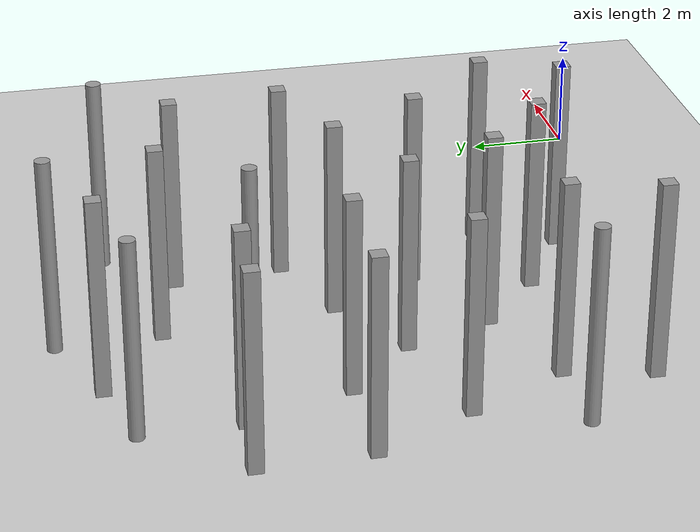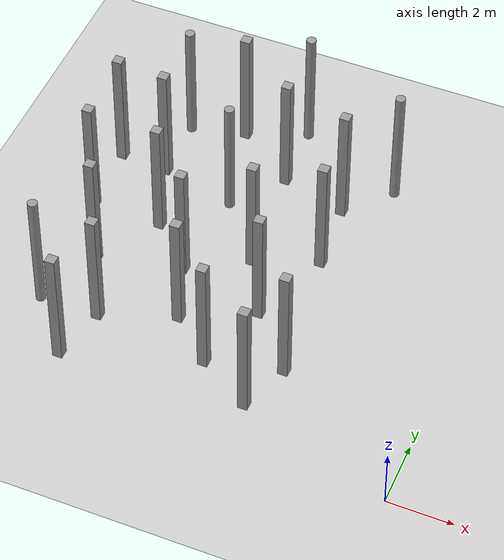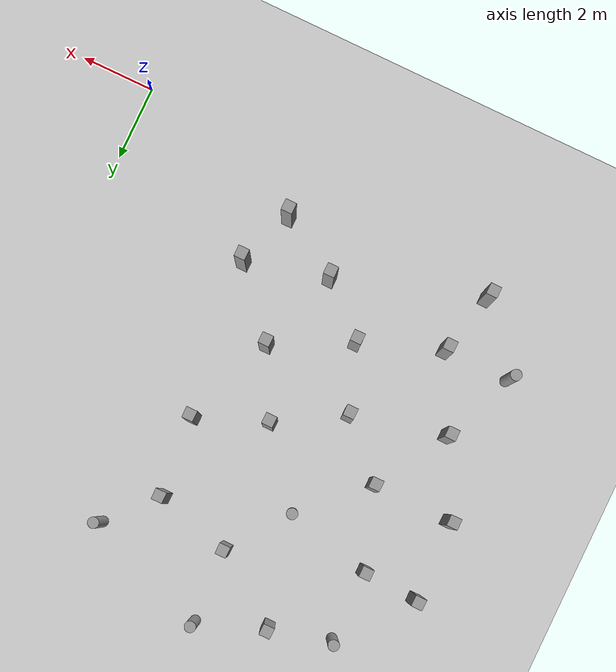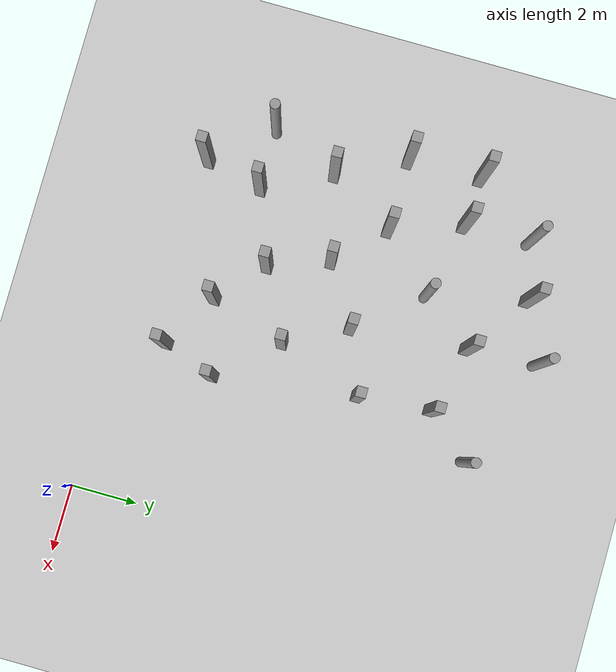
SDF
<sdf version="1.6">
 <world name="default">
  <model name="ground_plane">
   <static>1</static>
   <link name="link">
    <collision name="collision">
     <geometry><plane><normal>0 0 1</normal><size>100 100</size></plane></geometry>
    </collision>
    <visual name="visual">
     <cast_shadows>0</cast_shadows>
     <geometry><plane><normal>0 0 1</normal><size>100 100</size></plane></geometry>
     <material>
      <script><uri>file://media/materials/scripts/gazebo.material</uri><name>Gazebo/Gray</name></script>
     </material>
    </visual>
   </link>
  </model>
  <model name="unit_box_clone_3">
   <link name="link">
    <inertial>
     <mass>1000</mass>
     <inertia><ixx>166.667</ixx><ixy>0</ixy><ixz>0</ixz><iyy>166.667</iyy><iyz>0</iyz><izz>166.667</izz></inertia>
    </inertial>
    <visual name="visual">
     <geometry><box><size>0.3 0.3 4</size></box></geometry>
     <material>
      <script><name>Gazebo/Grey</name><uri>file://media/materials/scripts/gazebo.material</uri></script>
      <shader type="vertex"><normal_map>__default__</normal_map></shader>
      <ambient>0.3 0.3 0.3 1</ambient>
      <diffuse>0.7 0.7 0.7 1</diffuse>
      <specular>0.01 0.01 0.01 1</specular>
      <emissive>0 0 0 1</emissive>
     </material>
    </visual>
    <collision name="collision">
     <geometry><box><size>0.3 0.3 4</size></box></geometry>
     <surface>
      <friction>
       <ode><mu>1</mu><mu2>1</mu2><fdir1>0 0 0</fdir1><slip1>0</slip1><slip2>0</slip2></ode>
       <torsional>
        <coefficient>1</coefficient>
        <patch_radius>0</patch_radius>
        <surface_radius>0</surface_radius>
        <use_patch_radius>1</use_patch_radius>
        <ode><slip>0</slip></ode>
       </torsional>
      </friction>
      <bounce><restitution_coefficient>0</restitution_coefficient><threshold>1e+06</threshold></bounce>
      <contact>
       <collide_without_contact>0</collide_without_contact>
       <collide_without_contact_bitmask>1</collide_without_contact_bitmask>
       <collide_bitmask>1</collide_bitmask>
       <ode>
        <soft_cfm>0</soft_cfm>
        <soft_erp>0.2</soft_erp>
        <kp>1e+13</kp>
        <kd>1</kd>
        <max_vel>0.01</max_vel>
        <min_depth>0</min_depth>
       </ode>
       <bullet>
        <split_impulse>1</split_impulse>
        <split_impulse_penetration_threshold>-0.01</split_impulse_penetration_threshold>
        <soft_cfm>0</soft_cfm>
        <soft_erp>0.2</soft_erp>
        <kp>1e+13</kp>
        <kd>1</kd>
       </bullet>
      </contact>
     </surface>
    </collision>
   </link>
   <static>0</static>
   <pose>-9.81581 6.97356 2.00001 3.5e-05 5e-06 -0.002659</pose>
  </model>
  <model name="unit_box_clone_4">
   <link name="link">
    <inertial>
     <mass>1000</mass>
     <inertia><ixx>166.667</ixx><ixy>0</ixy><ixz>0</ixz><iyy>166.667</iyy><iyz>0</iyz><izz>166.667</izz></inertia>
    </inertial>
    <visual name="visual">
     <geometry><box><size>0.3 0.3 4</size></box></geometry>
     <material>
      <script><name>Gazebo/Grey</name><uri>file://media/materials/scripts/gazebo.material</uri></script>
      <shader type="vertex"><normal_map>__default__</normal_map></shader>
      <ambient>0.3 0.3 0.3 1</ambient>
      <diffuse>0.7 0.7 0.7 1</diffuse>
      <specular>0.01 0.01 0.01 1</specular>
      <emissive>0 0 0 1</emissive>
     </material>
    </visual>
    <collision name="collision">
     <geometry><box><size>0.3 0.3 4</size></box></geometry>
     <surface>
      <friction>
       <ode><mu>1</mu><mu2>1</mu2><fdir1>0 0 0</fdir1><slip1>0</slip1><slip2>0</slip2></ode>
       <torsional>
        <coefficient>1</coefficient>
        <patch_radius>0</patch_radius>
        <surface_radius>0</surface_radius>
        <use_patch_radius>1</use_patch_radius>
        <ode><slip>0</slip></ode>
       </torsional>
      </friction>
      <bounce><restitution_coefficient>0</restitution_coefficient><threshold>1e+06</threshold></bounce>
      <contact>
       <collide_without_contact>0</collide_without_contact>
       <collide_without_contact_bitmask>1</collide_without_contact_bitmask>
       <collide_bitmask>1</collide_bitmask>
       <ode>
        <soft_cfm>0</soft_cfm>
        <soft_erp>0.2</soft_erp>
        <kp>1e+13</kp>
        <kd>1</kd>
        <max_vel>0.01</max_vel>
        <min_depth>0</min_depth>
       </ode>
       <bullet>
        <split_impulse>1</split_impulse>
        <split_impulse_penetration_threshold>-0.01</split_impulse_penetration_threshold>
        <soft_cfm>0</soft_cfm>
        <soft_erp>0.2</soft_erp>
        <kp>1e+13</kp>
        <kd>1</kd>
       </bullet>
      </contact>
     </surface>
    </collision>
   </link>
   <static>0</static>
   <pose>-12.064 9.20885 2.00002 0.00014 1e-05 -0.004402</pose>
  </model>
  <model name="unit_box_clone_8">
   <link name="link">
    <inertial>
     <mass>1000</mass>
     <inertia><ixx>166.667</ixx><ixy>0</ixy><ixz>0</ixz><iyy>166.667</iyy><iyz>0</iyz><izz>166.667</izz></inertia>
    </inertial>
    <visual name="visual">
     <geometry><box><size>0.3 0.3 4</size></box></geometry>
     <material>
      <script><name>Gazebo/Grey</name><uri>file://media/materials/scripts/gazebo.material</uri></script>
      <shader type="vertex"><normal_map>__default__</normal_map></shader>
      <ambient>0.3 0.3 0.3 1</ambient>
      <diffuse>0.7 0.7 0.7 1</diffuse>
      <specular>0.01 0.01 0.01 1</specular>
      <emissive>0 0 0 1</emissive>
     </material>
    </visual>
    <collision name="collision">
     <geometry><box><size>0.3 0.3 4</size></box></geometry>
     <surface>
      <friction>
       <ode><mu>1</mu><mu2>1</mu2><fdir1>0 0 0</fdir1><slip1>0</slip1><slip2>0</slip2></ode>
       <torsional>
        <coefficient>1</coefficient>
        <patch_radius>0</patch_radius>
        <surface_radius>0</surface_radius>
        <use_patch_radius>1</use_patch_radius>
        <ode><slip>0</slip></ode>
       </torsional>
      </friction>
      <bounce><restitution_coefficient>0</restitution_coefficient><threshold>1e+06</threshold></bounce>
      <contact>
       <collide_without_contact>0</collide_without_contact>
       <collide_without_contact_bitmask>1</collide_without_contact_bitmask>
       <collide_bitmask>1</collide_bitmask>
       <ode>
        <soft_cfm>0</soft_cfm>
        <soft_erp>0.2</soft_erp>
        <kp>1e+13</kp>
        <kd>1</kd>
        <max_vel>0.01</max_vel>
        <min_depth>0</min_depth>
       </ode>
       <bullet>
        <split_impulse>1</split_impulse>
        <split_impulse_penetration_threshold>-0.01</split_impulse_penetration_threshold>
        <soft_cfm>0</soft_cfm>
        <soft_erp>0.2</soft_erp>
        <kp>1e+13</kp>
        <kd>1</kd>
       </bullet>
      </contact>
     </surface>
    </collision>
   </link>
   <static>0</static>
   <pose>-6.68892 6.67586 2 -3e-06 -1.7e-05 -0.006785</pose>
  </model>
  <model name="unit_box_clone_9">
   <link name="link">
    <inertial>
     <mass>1000</mass>
     <inertia><ixx>166.667</ixx><ixy>0</ixy><ixz>0</ixz><iyy>166.667</iyy><iyz>0</iyz><izz>166.667</izz></inertia>
    </inertial>
    <visual name="visual">
     <geometry><box><size>0.3 0.3 4</size></box></geometry>
     <material>
      <script><name>Gazebo/Grey</name><uri>file://media/materials/scripts/gazebo.material</uri></script>
      <shader type="vertex"><normal_map>__default__</normal_map></shader>
      <ambient>0.3 0.3 0.3 1</ambient>
      <diffuse>0.7 0.7 0.7 1</diffuse>
      <specular>0.01 0.01 0.01 1</specular>
      <emissive>0 0 0 1</emissive>
     </material>
    </visual>
    <collision name="collision">
     <geometry><box><size>0.3 0.3 4</size></box></geometry>
     <surface>
      <friction>
       <ode><mu>1</mu><mu2>1</mu2><fdir1>0 0 0</fdir1><slip1>0</slip1><slip2>0</slip2></ode>
       <torsional>
        <coefficient>1</coefficient>
        <patch_radius>0</patch_radius>
        <surface_radius>0</surface_radius>
        <use_patch_radius>1</use_patch_radius>
        <ode><slip>0</slip></ode>
       </torsional>
      </friction>
      <bounce><restitution_coefficient>0</restitution_coefficient><threshold>1e+06</threshold></bounce>
      <contact>
       <collide_without_contact>0</collide_without_contact>
       <collide_without_contact_bitmask>1</collide_without_contact_bitmask>
       <collide_bitmask>1</collide_bitmask>
       <ode>
        <soft_cfm>0</soft_cfm>
        <soft_erp>0.2</soft_erp>
        <kp>1e+13</kp>
        <kd>1</kd>
        <max_vel>0.01</max_vel>
        <min_depth>0</min_depth>
       </ode>
       <bullet>
        <split_impulse>1</split_impulse>
        <split_impulse_penetration_threshold>-0.01</split_impulse_penetration_threshold>
        <soft_cfm>0</soft_cfm>
        <soft_erp>0.2</soft_erp>
        <kp>1e+13</kp>
        <kd>1</kd>
       </bullet>
      </contact>
     </surface>
    </collision>
   </link>
   <static>0</static>
   <pose>-8.44974 5.60757 2.00001 3.5e-05 5e-06 -0.002659</pose>
  </model>
  <model name="unit_box_clone_10">
   <link name="link">
    <inertial>
     <mass>1000</mass>
     <inertia><ixx>166.667</ixx><ixy>0</ixy><ixz>0</ixz><iyy>166.667</iyy><iyz>0</iyz><izz>166.667</izz></inertia>
    </inertial>
    <visual name="visual">
     <geometry><box><size>0.3 0.3 4</size></box></geometry>
     <material>
      <script><name>Gazebo/Grey</name><uri>file://media/materials/scripts/gazebo.material</uri></script>
      <shader type="vertex"><normal_map>__default__</normal_map></shader>
      <ambient>0.3 0.3 0.3 1</ambient>
      <diffuse>0.7 0.7 0.7 1</diffuse>
      <specular>0.01 0.01 0.01 1</specular>
      <emissive>0 0 0 1</emissive>
     </material>
    </visual>
    <collision name="collision">
     <geometry><box><size>0.3 0.3 4</size></box></geometry>
     <surface>
      <friction>
       <ode><mu>1</mu><mu2>1</mu2><fdir1>0 0 0</fdir1><slip1>0</slip1><slip2>0</slip2></ode>
       <torsional>
        <coefficient>1</coefficient>
        <patch_radius>0</patch_radius>
        <surface_radius>0</surface_radius>
        <use_patch_radius>1</use_patch_radius>
        <ode><slip>0</slip></ode>
       </torsional>
      </friction>
      <bounce><restitution_coefficient>0</restitution_coefficient><threshold>1e+06</threshold></bounce>
      <contact>
       <collide_without_contact>0</collide_without_contact>
       <collide_without_contact_bitmask>1</collide_without_contact_bitmask>
       <collide_bitmask>1</collide_bitmask>
       <ode>
        <soft_cfm>0</soft_cfm>
        <soft_erp>0.2</soft_erp>
        <kp>1e+13</kp>
        <kd>1</kd>
        <max_vel>0.01</max_vel>
        <min_depth>0</min_depth>
       </ode>
       <bullet>
        <split_impulse>1</split_impulse>
        <split_impulse_penetration_threshold>-0.01</split_impulse_penetration_threshold>
        <soft_cfm>0</soft_cfm>
        <soft_erp>0.2</soft_erp>
        <kp>1e+13</kp>
        <kd>1</kd>
       </bullet>
      </contact>
     </surface>
    </collision>
   </link>
   <static>0</static>
   <pose>-8.91741 11.4995 2 0 -3e-06 -0.008455</pose>
  </model>
  <model name="unit_box_clone_11">
   <link name="link">
    <inertial>
     <mass>1000</mass>
     <inertia><ixx>166.667</ixx><ixy>0</ixy><ixz>0</ixz><iyy>166.667</iyy><iyz>0</iyz><izz>166.667</izz></inertia>
    </inertial>
    <visual name="visual">
     <geometry><box><size>0.3 0.3 4</size></box></geometry>
     <material>
      <script><name>Gazebo/Grey</name><uri>file://media/materials/scripts/gazebo.material</uri></script>
      <shader type="vertex"><normal_map>__default__</normal_map></shader>
      <ambient>0.3 0.3 0.3 1</ambient>
      <diffuse>0.7 0.7 0.7 1</diffuse>
      <specular>0.01 0.01 0.01 1</specular>
      <emissive>0 0 0 1</emissive>
     </material>
    </visual>
    <collision name="collision">
     <geometry><box><size>0.3 0.3 4</size></box></geometry>
     <surface>
      <friction>
       <ode><mu>1</mu><mu2>1</mu2><fdir1>0 0 0</fdir1><slip1>0</slip1><slip2>0</slip2></ode>
       <torsional>
        <coefficient>1</coefficient>
        <patch_radius>0</patch_radius>
        <surface_radius>0</surface_radius>
        <use_patch_radius>1</use_patch_radius>
        <ode><slip>0</slip></ode>
       </torsional>
      </friction>
      <bounce><restitution_coefficient>0</restitution_coefficient><threshold>1e+06</threshold></bounce>
      <contact>
       <collide_without_contact>0</collide_without_contact>
       <collide_without_contact_bitmask>1</collide_without_contact_bitmask>
       <collide_bitmask>1</collide_bitmask>
       <ode>
        <soft_cfm>0</soft_cfm>
        <soft_erp>0.2</soft_erp>
        <kp>1e+13</kp>
        <kd>1</kd>
        <max_vel>0.01</max_vel>
        <min_depth>0</min_depth>
       </ode>
       <bullet>
        <split_impulse>1</split_impulse>
        <split_impulse_penetration_threshold>-0.01</split_impulse_penetration_threshold>
        <soft_cfm>0</soft_cfm>
        <soft_erp>0.2</soft_erp>
        <kp>1e+13</kp>
        <kd>1</kd>
       </bullet>
      </contact>
     </surface>
    </collision>
   </link>
   <static>0</static>
   <pose>-10.559 9.10969 2 -1.3e-05 5e-06 0.00257</pose>
  </model>
  <model name="unit_box_clone_12">
   <link name="link">
    <inertial>
     <mass>1000</mass>
     <inertia><ixx>166.667</ixx><ixy>0</ixy><ixz>0</ixz><iyy>166.667</iyy><iyz>0</iyz><izz>166.667</izz></inertia>
    </inertial>
    <visual name="visual">
     <geometry><box><size>0.3 0.3 4</size></box></geometry>
     <material>
      <script><name>Gazebo/Grey</name><uri>file://media/materials/scripts/gazebo.material</uri></script>
      <shader type="vertex"><normal_map>__default__</normal_map></shader>
      <ambient>0.3 0.3 0.3 1</ambient>
      <diffuse>0.7 0.7 0.7 1</diffuse>
      <specular>0.01 0.01 0.01 1</specular>
      <emissive>0 0 0 1</emissive>
     </material>
    </visual>
    <collision name="collision">
     <geometry><box><size>0.3 0.3 4</size></box></geometry>
     <surface>
      <friction>
       <ode><mu>1</mu><mu2>1</mu2><fdir1>0 0 0</fdir1><slip1>0</slip1><slip2>0</slip2></ode>
       <torsional>
        <coefficient>1</coefficient>
        <patch_radius>0</patch_radius>
        <surface_radius>0</surface_radius>
        <use_patch_radius>1</use_patch_radius>
        <ode><slip>0</slip></ode>
       </torsional>
      </friction>
      <bounce><restitution_coefficient>0</restitution_coefficient><threshold>1e+06</threshold></bounce>
      <contact>
       <collide_without_contact>0</collide_without_contact>
       <collide_without_contact_bitmask>1</collide_without_contact_bitmask>
       <collide_bitmask>1</collide_bitmask>
       <ode>
        <soft_cfm>0</soft_cfm>
        <soft_erp>0.2</soft_erp>
        <kp>1e+13</kp>
        <kd>1</kd>
        <max_vel>0.01</max_vel>
        <min_depth>0</min_depth>
       </ode>
       <bullet>
        <split_impulse>1</split_impulse>
        <split_impulse_penetration_threshold>-0.01</split_impulse_penetration_threshold>
        <soft_cfm>0</soft_cfm>
        <soft_erp>0.2</soft_erp>
        <kp>1e+13</kp>
        <kd>1</kd>
       </bullet>
      </contact>
     </surface>
    </collision>
   </link>
   <static>0</static>
   <pose>-6.46638 2.58987 2 -8e-06 -1e-06 0.000576</pose>
  </model>
  <model name="unit_box_clone_13">
   <link name="link">
    <inertial>
     <mass>1000</mass>
     <inertia><ixx>166.667</ixx><ixy>0</ixy><ixz>0</ixz><iyy>166.667</iyy><iyz>0</iyz><izz>166.667</izz></inertia>
    </inertial>
    <visual name="visual">
     <geometry><box><size>0.3 0.3 4</size></box></geometry>
     <material>
      <script><name>Gazebo/Grey</name><uri>file://media/materials/scripts/gazebo.material</uri></script>
      <shader type="vertex"><normal_map>__default__</normal_map></shader>
      <ambient>0.3 0.3 0.3 1</ambient>
      <diffuse>0.7 0.7 0.7 1</diffuse>
      <specular>0.01 0.01 0.01 1</specular>
      <emissive>0 0 0 1</emissive>
     </material>
    </visual>
    <collision name="collision">
     <geometry><box><size>0.3 0.3 4</size></box></geometry>
     <surface>
      <friction>
       <ode><mu>1</mu><mu2>1</mu2><fdir1>0 0 0</fdir1><slip1>0</slip1><slip2>0</slip2></ode>
       <torsional>
        <coefficient>1</coefficient>
        <patch_radius>0</patch_radius>
        <surface_radius>0</surface_radius>
        <use_patch_radius>1</use_patch_radius>
        <ode><slip>0</slip></ode>
       </torsional>
      </friction>
      <bounce><restitution_coefficient>0</restitution_coefficient><threshold>1e+06</threshold></bounce>
      <contact>
       <collide_without_contact>0</collide_without_contact>
       <collide_without_contact_bitmask>1</collide_without_contact_bitmask>
       <collide_bitmask>1</collide_bitmask>
       <ode>
        <soft_cfm>0</soft_cfm>
        <soft_erp>0.2</soft_erp>
        <kp>1e+13</kp>
        <kd>1</kd>
        <max_vel>0.01</max_vel>
        <min_depth>0</min_depth>
       </ode>
       <bullet>
        <split_impulse>1</split_impulse>
        <split_impulse_penetration_threshold>-0.01</split_impulse_penetration_threshold>
        <soft_cfm>0</soft_cfm>
        <soft_erp>0.2</soft_erp>
        <kp>1e+13</kp>
        <kd>1</kd>
       </bullet>
      </contact>
     </surface>
    </collision>
   </link>
   <static>0</static>
   <pose>-10.0001 3.00014 2 -1.3e-05 7e-06 -0.002228</pose>
  </model>
  <model name="unit_box_clone_14">
   <link name="link">
    <inertial>
     <mass>1000</mass>
     <inertia><ixx>166.667</ixx><ixy>0</ixy><ixz>0</ixz><iyy>166.667</iyy><iyz>0</iyz><izz>166.667</izz></inertia>
    </inertial>
    <visual name="visual">
     <geometry><box><size>0.3 0.3 4</size></box></geometry>
     <material>
      <script><name>Gazebo/Grey</name><uri>file://media/materials/scripts/gazebo.material</uri></script>
      <shader type="vertex"><normal_map>__default__</normal_map></shader>
      <ambient>0.3 0.3 0.3 1</ambient>
      <diffuse>0.7 0.7 0.7 1</diffuse>
      <specular>0.01 0.01 0.01 1</specular>
      <emissive>0 0 0 1</emissive>
     </material>
    </visual>
    <collision name="collision">
     <geometry><box><size>0.3 0.3 4</size></box></geometry>
     <surface>
      <friction>
       <ode><mu>1</mu><mu2>1</mu2><fdir1>0 0 0</fdir1><slip1>0</slip1><slip2>0</slip2></ode>
       <torsional>
        <coefficient>1</coefficient>
        <patch_radius>0</patch_radius>
        <surface_radius>0</surface_radius>
        <use_patch_radius>1</use_patch_radius>
        <ode><slip>0</slip></ode>
       </torsional>
      </friction>
      <bounce><restitution_coefficient>0</restitution_coefficient><threshold>1e+06</threshold></bounce>
      <contact>
       <collide_without_contact>0</collide_without_contact>
       <collide_without_contact_bitmask>1</collide_without_contact_bitmask>
       <collide_bitmask>1</collide_bitmask>
       <ode>
        <soft_cfm>0</soft_cfm>
        <soft_erp>0.2</soft_erp>
        <kp>1e+13</kp>
        <kd>1</kd>
        <max_vel>0.01</max_vel>
        <min_depth>0</min_depth>
       </ode>
       <bullet>
        <split_impulse>1</split_impulse>
        <split_impulse_penetration_threshold>-0.01</split_impulse_penetration_threshold>
        <soft_cfm>0</soft_cfm>
        <soft_erp>0.2</soft_erp>
        <kp>1e+13</kp>
        <kd>1</kd>
       </bullet>
      </contact>
     </surface>
    </collision>
   </link>
   <static>0</static>
   <pose>-11.9999 7.00011 2 2e-06 -1.7e-05 -0.003746</pose>
  </model>
  <model name="unit_box_clone_16">
   <link name="link">
    <inertial>
     <mass>1000</mass>
     <inertia><ixx>166.667</ixx><ixy>0</ixy><ixz>0</ixz><iyy>166.667</iyy><iyz>0</iyz><izz>166.667</izz></inertia>
    </inertial>
    <visual name="visual">
     <geometry><box><size>0.3 0.3 4</size></box></geometry>
     <material>
      <script><name>Gazebo/Grey</name><uri>file://media/materials/scripts/gazebo.material</uri></script>
      <shader type="vertex"><normal_map>__default__</normal_map></shader>
      <ambient>0.3 0.3 0.3 1</ambient>
      <diffuse>0.7 0.7 0.7 1</diffuse>
      <specular>0.01 0.01 0.01 1</specular>
      <emissive>0 0 0 1</emissive>
     </material>
    </visual>
    <collision name="collision">
     <geometry><box><size>0.3 0.3 4</size></box></geometry>
     <surface>
      <friction>
       <ode><mu>1</mu><mu2>1</mu2><fdir1>0 0 0</fdir1><slip1>0</slip1><slip2>0</slip2></ode>
       <torsional>
        <coefficient>1</coefficient>
        <patch_radius>0</patch_radius>
        <surface_radius>0</surface_radius>
        <use_patch_radius>1</use_patch_radius>
        <ode><slip>0</slip></ode>
       </torsional>
      </friction>
      <bounce><restitution_coefficient>0</restitution_coefficient><threshold>1e+06</threshold></bounce>
      <contact>
       <collide_without_contact>0</collide_without_contact>
       <collide_without_contact_bitmask>1</collide_without_contact_bitmask>
       <collide_bitmask>1</collide_bitmask>
       <ode>
        <soft_cfm>0</soft_cfm>
        <soft_erp>0.2</soft_erp>
        <kp>1e+13</kp>
        <kd>1</kd>
        <max_vel>0.01</max_vel>
        <min_depth>0</min_depth>
       </ode>
       <bullet>
        <split_impulse>1</split_impulse>
        <split_impulse_penetration_threshold>-0.01</split_impulse_penetration_threshold>
        <soft_cfm>0</soft_cfm>
        <soft_erp>0.2</soft_erp>
        <kp>1e+13</kp>
        <kd>1</kd>
       </bullet>
      </contact>
     </surface>
    </collision>
   </link>
   <static>0</static>
   <pose>-10.9999 5.00011 2 2e-06 -1.7e-05 -0.003746</pose>
  </model>
  <model name="unit_box_clone_18">
   <link name="link">
    <inertial>
     <mass>1000</mass>
     <inertia><ixx>166.667</ixx><ixy>0</ixy><ixz>0</ixz><iyy>166.667</iyy><iyz>0</iyz><izz>166.667</izz></inertia>
    </inertial>
    <visual name="visual">
     <geometry><box><size>0.3 0.3 4</size></box></geometry>
     <material>
      <script><name>Gazebo/Grey</name><uri>file://media/materials/scripts/gazebo.material</uri></script>
      <shader type="vertex"><normal_map>__default__</normal_map></shader>
      <ambient>0.3 0.3 0.3 1</ambient>
      <diffuse>0.7 0.7 0.7 1</diffuse>
      <specular>0.01 0.01 0.01 1</specular>
      <emissive>0 0 0 1</emissive>
     </material>
    </visual>
    <collision name="collision">
     <geometry><box><size>0.3 0.3 4</size></box></geometry>
     <surface>
      <friction>
       <ode><mu>1</mu><mu2>1</mu2><fdir1>0 0 0</fdir1><slip1>0</slip1><slip2>0</slip2></ode>
       <torsional>
        <coefficient>1</coefficient>
        <patch_radius>0</patch_radius>
        <surface_radius>0</surface_radius>
        <use_patch_radius>1</use_patch_radius>
        <ode><slip>0</slip></ode>
       </torsional>
      </friction>
      <bounce><restitution_coefficient>0</restitution_coefficient><threshold>1e+06</threshold></bounce>
      <contact>
       <collide_without_contact>0</collide_without_contact>
       <collide_without_contact_bitmask>1</collide_without_contact_bitmask>
       <collide_bitmask>1</collide_bitmask>
       <ode>
        <soft_cfm>0</soft_cfm>
        <soft_erp>0.2</soft_erp>
        <kp>1e+13</kp>
        <kd>1</kd>
        <max_vel>0.01</max_vel>
        <min_depth>0</min_depth>
       </ode>
       <bullet>
        <split_impulse>1</split_impulse>
        <split_impulse_penetration_threshold>-0.01</split_impulse_penetration_threshold>
        <soft_cfm>0</soft_cfm>
        <soft_erp>0.2</soft_erp>
        <kp>1e+13</kp>
        <kd>1</kd>
       </bullet>
      </contact>
     </surface>
    </collision>
   </link>
   <static>0</static>
   <pose>-5.73005 4.87582 2 3e-06 -3e-06 -0.002179</pose>
  </model>
  <model name="unit_box_clone_23">
   <link name="link">
    <inertial>
     <mass>1000</mass>
     <inertia><ixx>166.667</ixx><ixy>0</ixy><ixz>0</ixz><iyy>166.667</iyy><iyz>0</iyz><izz>166.667</izz></inertia>
    </inertial>
    <visual name="visual">
     <geometry><box><size>0.3 0.3 4</size></box></geometry>
     <material>
      <script><name>Gazebo/Grey</name><uri>file://media/materials/scripts/gazebo.material</uri></script>
      <shader type="vertex"><normal_map>__default__</normal_map></shader>
      <ambient>0.3 0.3 0.3 1</ambient>
      <diffuse>0.7 0.7 0.7 1</diffuse>
      <specular>0.01 0.01 0.01 1</specular>
      <emissive>0 0 0 1</emissive>
     </material>
    </visual>
    <collision name="collision">
     <geometry><box><size>0.3 0.3 4</size></box></geometry>
     <surface>
      <friction>
       <ode><mu>1</mu><mu2>1</mu2><fdir1>0 0 0</fdir1><slip1>0</slip1><slip2>0</slip2></ode>
       <torsional>
        <coefficient>1</coefficient>
        <patch_radius>0</patch_radius>
        <surface_radius>0</surface_radius>
        <use_patch_radius>1</use_patch_radius>
        <ode><slip>0</slip></ode>
       </torsional>
      </friction>
      <bounce><restitution_coefficient>0</restitution_coefficient><threshold>1e+06</threshold></bounce>
      <contact>
       <collide_without_contact>0</collide_without_contact>
       <collide_without_contact_bitmask>1</collide_without_contact_bitmask>
       <collide_bitmask>1</collide_bitmask>
       <ode>
        <soft_cfm>0</soft_cfm>
        <soft_erp>0.2</soft_erp>
        <kp>1e+13</kp>
        <kd>1</kd>
        <max_vel>0.01</max_vel>
        <min_depth>0</min_depth>
       </ode>
       <bullet>
        <split_impulse>1</split_impulse>
        <split_impulse_penetration_threshold>-0.01</split_impulse_penetration_threshold>
        <soft_cfm>0</soft_cfm>
        <soft_erp>0.2</soft_erp>
        <kp>1e+13</kp>
        <kd>1</kd>
       </bullet>
      </contact>
     </surface>
    </collision>
   </link>
   <static>0</static>
   <pose>-5.00223 9.59192 2 4e-06 1e-06 -0.004996</pose>
  </model>
  <model name="unit_box_clone_24">
   <link name="link">
    <inertial>
     <mass>1000</mass>
     <inertia><ixx>166.667</ixx><ixy>0</ixy><ixz>0</ixz><iyy>166.667</iyy><iyz>0</iyz><izz>166.667</izz></inertia>
    </inertial>
    <visual name="visual">
     <geometry><box><size>0.3 0.3 4</size></box></geometry>
     <material>
      <script><name>Gazebo/Grey</name><uri>file://media/materials/scripts/gazebo.material</uri></script>
      <shader type="vertex"><normal_map>__default__</normal_map></shader>
      <ambient>0.3 0.3 0.3 1</ambient>
      <diffuse>0.7 0.7 0.7 1</diffuse>
      <specular>0.01 0.01 0.01 1</specular>
      <emissive>0 0 0 1</emissive>
     </material>
    </visual>
    <collision name="collision">
     <geometry><box><size>0.3 0.3 4</size></box></geometry>
     <surface>
      <friction>
       <ode><mu>1</mu><mu2>1</mu2><fdir1>0 0 0</fdir1><slip1>0</slip1><slip2>0</slip2></ode>
       <torsional>
        <coefficient>1</coefficient>
        <patch_radius>0</patch_radius>
        <surface_radius>0</surface_radius>
        <use_patch_radius>1</use_patch_radius>
        <ode><slip>0</slip></ode>
       </torsional>
      </friction>
      <bounce><restitution_coefficient>0</restitution_coefficient><threshold>1e+06</threshold></bounce>
      <contact>
       <collide_without_contact>0</collide_without_contact>
       <collide_without_contact_bitmask>1</collide_without_contact_bitmask>
       <collide_bitmask>1</collide_bitmask>
       <ode>
        <soft_cfm>0</soft_cfm>
        <soft_erp>0.2</soft_erp>
        <kp>1e+13</kp>
        <kd>1</kd>
        <max_vel>0.01</max_vel>
        <min_depth>0</min_depth>
       </ode>
       <bullet>
        <split_impulse>1</split_impulse>
        <split_impulse_penetration_threshold>-0.01</split_impulse_penetration_threshold>
        <soft_cfm>0</soft_cfm>
        <soft_erp>0.2</soft_erp>
        <kp>1e+13</kp>
        <kd>1</kd>
       </bullet>
      </contact>
     </surface>
    </collision>
   </link>
   <static>0</static>
   <pose>-4.8095 7.40648 2.00001 5.5e-05 -3e-06 0.002933</pose>
  </model>
  <model name="unit_box_clone_27">
   <link name="link">
    <inertial>
     <mass>1000</mass>
     <inertia><ixx>166.667</ixx><ixy>0</ixy><ixz>0</ixz><iyy>166.667</iyy><iyz>0</iyz><izz>166.667</izz></inertia>
    </inertial>
    <visual name="visual">
     <geometry><box><size>0.3 0.3 4</size></box></geometry>
     <material>
      <script><name>Gazebo/Grey</name><uri>file://media/materials/scripts/gazebo.material</uri></script>
      <shader type="vertex"><normal_map>__default__</normal_map></shader>
      <ambient>0.3 0.3 0.3 1</ambient>
      <diffuse>0.7 0.7 0.7 1</diffuse>
      <specular>0.01 0.01 0.01 1</specular>
      <emissive>0 0 0 1</emissive>
     </material>
    </visual>
    <collision name="collision">
     <geometry><box><size>0.3 0.3 4</size></box></geometry>
     <surface>
      <friction>
       <ode><mu>1</mu><mu2>1</mu2><fdir1>0 0 0</fdir1><slip1>0</slip1><slip2>0</slip2></ode>
       <torsional>
        <coefficient>1</coefficient>
        <patch_radius>0</patch_radius>
        <surface_radius>0</surface_radius>
        <use_patch_radius>1</use_patch_radius>
        <ode><slip>0</slip></ode>
       </torsional>
      </friction>
      <bounce><restitution_coefficient>0</restitution_coefficient><threshold>1e+06</threshold></bounce>
      <contact>
       <collide_without_contact>0</collide_without_contact>
       <collide_without_contact_bitmask>1</collide_without_contact_bitmask>
       <collide_bitmask>1</collide_bitmask>
       <ode>
        <soft_cfm>0</soft_cfm>
        <soft_erp>0.2</soft_erp>
        <kp>1e+13</kp>
        <kd>1</kd>
        <max_vel>0.01</max_vel>
        <min_depth>0</min_depth>
       </ode>
       <bullet>
        <split_impulse>1</split_impulse>
        <split_impulse_penetration_threshold>-0.01</split_impulse_penetration_threshold>
        <soft_cfm>0</soft_cfm>
        <soft_erp>0.2</soft_erp>
        <kp>1e+13</kp>
        <kd>1</kd>
       </bullet>
      </contact>
     </surface>
    </collision>
   </link>
   <static>0</static>
   <pose>-4.8058 1.58864 2 -2e-06 -3e-06 -0.004672</pose>
  </model>
  <model name="unit_box_clone_28">
   <link name="link">
    <inertial>
     <mass>1000</mass>
     <inertia><ixx>166.667</ixx><ixy>0</ixy><ixz>0</ixz><iyy>166.667</iyy><iyz>0</iyz><izz>166.667</izz></inertia>
    </inertial>
    <visual name="visual">
     <geometry><box><size>0.3 0.3 4</size></box></geometry>
     <material>
      <script><name>Gazebo/Grey</name><uri>file://media/materials/scripts/gazebo.material</uri></script>
      <shader type="vertex"><normal_map>__default__</normal_map></shader>
      <ambient>0.3 0.3 0.3 1</ambient>
      <diffuse>0.7 0.7 0.7 1</diffuse>
      <specular>0.01 0.01 0.01 1</specular>
      <emissive>0 0 0 1</emissive>
     </material>
    </visual>
    <collision name="collision">
     <geometry><box><size>0.3 0.3 4</size></box></geometry>
     <surface>
      <friction>
       <ode><mu>1</mu><mu2>1</mu2><fdir1>0 0 0</fdir1><slip1>0</slip1><slip2>0</slip2></ode>
       <torsional>
        <coefficient>1</coefficient>
        <patch_radius>0</patch_radius>
        <surface_radius>0</surface_radius>
        <use_patch_radius>1</use_patch_radius>
        <ode><slip>0</slip></ode>
       </torsional>
      </friction>
      <bounce><restitution_coefficient>0</restitution_coefficient><threshold>1e+06</threshold></bounce>
      <contact>
       <collide_without_contact>0</collide_without_contact>
       <collide_without_contact_bitmask>1</collide_without_contact_bitmask>
       <collide_bitmask>1</collide_bitmask>
       <ode>
        <soft_cfm>0</soft_cfm>
        <soft_erp>0.2</soft_erp>
        <kp>1e+13</kp>
        <kd>1</kd>
        <max_vel>0.01</max_vel>
        <min_depth>0</min_depth>
       </ode>
       <bullet>
        <split_impulse>1</split_impulse>
        <split_impulse_penetration_threshold>-0.01</split_impulse_penetration_threshold>
        <soft_cfm>0</soft_cfm>
        <soft_erp>0.2</soft_erp>
        <kp>1e+13</kp>
        <kd>1</kd>
       </bullet>
      </contact>
     </surface>
    </collision>
   </link>
   <static>0</static>
   <pose>-7.80121 3.82481 2 -8e-06 -1e-06 -0.001257</pose>
  </model>
  <model name="unit_cylinder_clone_1_clone_7_clone_0">
   <link name="link">
    <inertial>
     <mass>1000</mass>
     <inertia><ixx>145.833</ixx><ixy>0</ixy><ixz>0</ixz><iyy>145.833</iyy><iyz>0</iyz><izz>125</izz></inertia>
    </inertial>
    <visual name="visual">
     <geometry><cylinder><radius>0.15</radius><length>4</length></cylinder></geometry>
     <material>
      <script><name>Gazebo/Grey</name><uri>file://media/materials/scripts/gazebo.material</uri></script>
      <shader type="vertex"><normal_map>__default__</normal_map></shader>
      <ambient>0.3 0.3 0.3 1</ambient>
      <diffuse>0.7 0.7 0.7 1</diffuse>
      <specular>0.01 0.01 0.01 1</specular>
      <emissive>0 0 0 1</emissive>
     </material>
    </visual>
    <collision name="collision">
     <geometry><cylinder><radius>0.15</radius><length>4</length></cylinder></geometry>
     <surface>
      <friction>
       <ode><mu>1</mu><mu2>1</mu2><fdir1>0 0 0</fdir1><slip1>0</slip1><slip2>0</slip2></ode>
       <torsional>
        <coefficient>1</coefficient>
        <patch_radius>0</patch_radius>
        <surface_radius>0</surface_radius>
        <use_patch_radius>1</use_patch_radius>
        <ode><slip>0</slip></ode>
       </torsional>
      </friction>
      <bounce><restitution_coefficient>0</restitution_coefficient><threshold>1e+06</threshold></bounce>
      <contact>
       <collide_without_contact>0</collide_without_contact>
       <collide_without_contact_bitmask>1</collide_without_contact_bitmask>
       <collide_bitmask>1</collide_bitmask>
       <ode>
        <soft_cfm>0</soft_cfm>
        <soft_erp>0.2</soft_erp>
        <kp>1e+13</kp>
        <kd>1</kd>
        <max_vel>0.01</max_vel>
        <min_depth>0</min_depth>
       </ode>
       <bullet>
        <split_impulse>1</split_impulse>
        <split_impulse_penetration_threshold>-0.01</split_impulse_penetration_threshold>
        <soft_cfm>0</soft_cfm>
        <soft_erp>0.2</soft_erp>
        <kp>1e+13</kp>
        <kd>1</kd>
       </bullet>
      </contact>
     </surface>
    </collision>
   </link>
   <static>0</static>
   <pose>-7.12945 12.2186 1.99995 -0.000251 0.000106 -0.394688</pose>
  </model>
  <model name="unit_cylinder_clone_1_clone_7_clone_5">
   <link name="link">
    <inertial>
     <mass>1000</mass>
     <inertia><ixx>145.833</ixx><ixy>0</ixy><ixz>0</ixz><iyy>145.833</iyy><iyz>0</iyz><izz>125</izz></inertia>
    </inertial>
    <visual name="visual">
     <geometry><cylinder><radius>0.15</radius><length>4</length></cylinder></geometry>
     <material>
      <script><name>Gazebo/Grey</name><uri>file://media/materials/scripts/gazebo.material</uri></script>
      <shader type="vertex"><normal_map>__default__</normal_map></shader>
      <ambient>0.3 0.3 0.3 1</ambient>
      <diffuse>0.7 0.7 0.7 1</diffuse>
      <specular>0.01 0.01 0.01 1</specular>
      <emissive>0 0 0 1</emissive>
     </material>
    </visual>
    <collision name="collision">
     <geometry><cylinder><radius>0.15</radius><length>4</length></cylinder></geometry>
     <surface>
      <friction>
       <ode><mu>1</mu><mu2>1</mu2><fdir1>0 0 0</fdir1><slip1>0</slip1><slip2>0</slip2></ode>
       <torsional>
        <coefficient>1</coefficient>
        <patch_radius>0</patch_radius>
        <surface_radius>0</surface_radius>
        <use_patch_radius>1</use_patch_radius>
        <ode><slip>0</slip></ode>
       </torsional>
      </friction>
      <bounce><restitution_coefficient>0</restitution_coefficient><threshold>1e+06</threshold></bounce>
      <contact>
       <collide_without_contact>0</collide_without_contact>
       <collide_without_contact_bitmask>1</collide_without_contact_bitmask>
       <collide_bitmask>1</collide_bitmask>
       <ode>
        <soft_cfm>0</soft_cfm>
        <soft_erp>0.2</soft_erp>
        <kp>1e+13</kp>
        <kd>1</kd>
        <max_vel>0.01</max_vel>
        <min_depth>0</min_depth>
       </ode>
       <bullet>
        <split_impulse>1</split_impulse>
        <split_impulse_penetration_threshold>-0.01</split_impulse_penetration_threshold>
        <soft_cfm>0</soft_cfm>
        <soft_erp>0.2</soft_erp>
        <kp>1e+13</kp>
        <kd>1</kd>
       </bullet>
      </contact>
     </surface>
    </collision>
   </link>
   <static>0</static>
   <pose>-10.5868 11.0903 1.99995 -0.000251 0.000106 -0.394688</pose>
  </model>
  <model name="unit_cylinder_clone_1_clone_7_clone_6">
   <link name="link">
    <inertial>
     <mass>1000</mass>
     <inertia><ixx>145.833</ixx><ixy>0</ixy><ixz>0</ixz><iyy>145.833</iyy><iyz>0</iyz><izz>125</izz></inertia>
    </inertial>
    <visual name="visual">
     <geometry><cylinder><radius>0.15</radius><length>4</length></cylinder></geometry>
     <material>
      <script><name>Gazebo/Grey</name><uri>file://media/materials/scripts/gazebo.material</uri></script>
      <shader type="vertex"><normal_map>__default__</normal_map></shader>
      <ambient>0.3 0.3 0.3 1</ambient>
      <diffuse>0.7 0.7 0.7 1</diffuse>
      <specular>0.01 0.01 0.01 1</specular>
      <emissive>0 0 0 1</emissive>
     </material>
    </visual>
    <collision name="collision">
     <geometry><cylinder><radius>0.15</radius><length>4</length></cylinder></geometry>
     <surface>
      <friction>
       <ode><mu>1</mu><mu2>1</mu2><fdir1>0 0 0</fdir1><slip1>0</slip1><slip2>0</slip2></ode>
       <torsional>
        <coefficient>1</coefficient>
        <patch_radius>0</patch_radius>
        <surface_radius>0</surface_radius>
        <use_patch_radius>1</use_patch_radius>
        <ode><slip>0</slip></ode>
       </torsional>
      </friction>
      <bounce><restitution_coefficient>0</restitution_coefficient><threshold>1e+06</threshold></bounce>
      <contact>
       <collide_without_contact>0</collide_without_contact>
       <collide_without_contact_bitmask>1</collide_without_contact_bitmask>
       <collide_bitmask>1</collide_bitmask>
       <ode>
        <soft_cfm>0</soft_cfm>
        <soft_erp>0.2</soft_erp>
        <kp>1e+13</kp>
        <kd>1</kd>
        <max_vel>0.01</max_vel>
        <min_depth>0</min_depth>
       </ode>
       <bullet>
        <split_impulse>1</split_impulse>
        <split_impulse_penetration_threshold>-0.01</split_impulse_penetration_threshold>
        <soft_cfm>0</soft_cfm>
        <soft_erp>0.2</soft_erp>
        <kp>1e+13</kp>
        <kd>1</kd>
       </bullet>
      </contact>
     </surface>
    </collision>
   </link>
   <static>0</static>
   <pose>-8.22512 8.56071 1.99995 -0.000251 0.000106 -0.393458</pose>
  </model>
  <model name="unit_cylinder_clone_1_clone_7_clone_7">
   <link name="link">
    <inertial>
     <mass>1000</mass>
     <inertia><ixx>145.833</ixx><ixy>0</ixy><ixz>0</ixz><iyy>145.833</iyy><iyz>0</iyz><izz>125</izz></inertia>
    </inertial>
    <visual name="visual">
     <geometry><cylinder><radius>0.15</radius><length>4</length></cylinder></geometry>
     <material>
      <script><name>Gazebo/Grey</name><uri>file://media/materials/scripts/gazebo.material</uri></script>
      <shader type="vertex"><normal_map>__default__</normal_map></shader>
      <ambient>0.3 0.3 0.3 1</ambient>
      <diffuse>0.7 0.7 0.7 1</diffuse>
      <specular>0.01 0.01 0.01 1</specular>
      <emissive>0 0 0 1</emissive>
     </material>
    </visual>
    <collision name="collision">
     <geometry><cylinder><radius>0.15</radius><length>4</length></cylinder></geometry>
     <surface>
      <friction>
       <ode><mu>1</mu><mu2>1</mu2><fdir1>0 0 0</fdir1><slip1>0</slip1><slip2>0</slip2></ode>
       <torsional>
        <coefficient>1</coefficient>
        <patch_radius>0</patch_radius>
        <surface_radius>0</surface_radius>
        <use_patch_radius>1</use_patch_radius>
        <ode><slip>0</slip></ode>
       </torsional>
      </friction>
      <bounce><restitution_coefficient>0</restitution_coefficient><threshold>1e+06</threshold></bounce>
      <contact>
       <collide_without_contact>0</collide_without_contact>
       <collide_without_contact_bitmask>1</collide_without_contact_bitmask>
       <collide_bitmask>1</collide_bitmask>
       <ode>
        <soft_cfm>0</soft_cfm>
        <soft_erp>0.2</soft_erp>
        <kp>1e+13</kp>
        <kd>1</kd>
        <max_vel>0.01</max_vel>
        <min_depth>0</min_depth>
       </ode>
       <bullet>
        <split_impulse>1</split_impulse>
        <split_impulse_penetration_threshold>-0.01</split_impulse_penetration_threshold>
        <soft_cfm>0</soft_cfm>
        <soft_erp>0.2</soft_erp>
        <kp>1e+13</kp>
        <kd>1</kd>
       </bullet>
      </contact>
     </surface>
    </collision>
   </link>
   <static>0</static>
   <pose>-3.80537 10.9102 1.99995 -0.000251 0.000106 -0.394688</pose>
  </model>
  <model name="unit_cylinder_clone_1_clone_7_clone_8">
   <link name="link">
    <inertial>
     <mass>1000</mass>
     <inertia><ixx>145.833</ixx><ixy>0</ixy><ixz>0</ixz><iyy>145.833</iyy><iyz>0</iyz><izz>125</izz></inertia>
    </inertial>
    <visual name="visual">
     <geometry><cylinder><radius>0.15</radius><length>4</length></cylinder></geometry>
     <material>
      <script><name>Gazebo/Grey</name><uri>file://media/materials/scripts/gazebo.material</uri></script>
      <shader type="vertex"><normal_map>__default__</normal_map></shader>
      <ambient>0.3 0.3 0.3 1</ambient>
      <diffuse>0.7 0.7 0.7 1</diffuse>
      <specular>0.01 0.01 0.01 1</specular>
      <emissive>0 0 0 1</emissive>
     </material>
    </visual>
    <collision name="collision">
     <geometry><cylinder><radius>0.15</radius><length>4</length></cylinder></geometry>
     <surface>
      <friction>
       <ode><mu>1</mu><mu2>1</mu2><fdir1>0 0 0</fdir1><slip1>0</slip1><slip2>0</slip2></ode>
       <torsional>
        <coefficient>1</coefficient>
        <patch_radius>0</patch_radius>
        <surface_radius>0</surface_radius>
        <use_patch_radius>1</use_patch_radius>
        <ode><slip>0</slip></ode>
       </torsional>
      </friction>
      <bounce><restitution_coefficient>0</restitution_coefficient><threshold>1e+06</threshold></bounce>
      <contact>
       <collide_without_contact>0</collide_without_contact>
       <collide_without_contact_bitmask>1</collide_without_contact_bitmask>
       <collide_bitmask>1</collide_bitmask>
       <ode>
        <soft_cfm>0</soft_cfm>
        <soft_erp>0.2</soft_erp>
        <kp>1e+13</kp>
        <kd>1</kd>
        <max_vel>0.01</max_vel>
        <min_depth>0</min_depth>
       </ode>
       <bullet>
        <split_impulse>1</split_impulse>
        <split_impulse_penetration_threshold>-0.01</split_impulse_penetration_threshold>
        <soft_cfm>0</soft_cfm>
        <soft_erp>0.2</soft_erp>
        <kp>1e+13</kp>
        <kd>1</kd>
       </bullet>
      </contact>
     </surface>
    </collision>
   </link>
   <static>0</static>
   <pose>-11.8189 2.97467 1.99995 -0.000251 0.000106 -0.394688</pose>
  </model>
  <model name="unit_box_clone_27_clone">
   <link name="link">
    <inertial>
     <mass>1000</mass>
     <inertia><ixx>166.667</ixx><ixy>0</ixy><ixz>0</ixz><iyy>166.667</iyy><iyz>0</iyz><izz>166.667</izz></inertia>
    </inertial>
    <visual name="visual">
     <geometry><box><size>0.3 0.3 4</size></box></geometry>
     <material>
      <script><name>Gazebo/Grey</name><uri>file://media/materials/scripts/gazebo.material</uri></script>
      <shader type="vertex"><normal_map>__default__</normal_map></shader>
      <ambient>0.3 0.3 0.3 1</ambient>
      <diffuse>0.7 0.7 0.7 1</diffuse>
      <specular>0.01 0.01 0.01 1</specular>
      <emissive>0 0 0 1</emissive>
     </material>
    </visual>
    <collision name="collision">
     <geometry><box><size>0.3 0.3 4</size></box></geometry>
     <surface>
      <friction>
       <ode><mu>1</mu><mu2>1</mu2><fdir1>0 0 0</fdir1><slip1>0</slip1><slip2>0</slip2></ode>
       <torsional>
        <coefficient>1</coefficient>
        <patch_radius>0</patch_radius>
        <surface_radius>0</surface_radius>
        <use_patch_radius>1</use_patch_radius>
        <ode><slip>0</slip></ode>
       </torsional>
      </friction>
      <bounce><restitution_coefficient>0</restitution_coefficient><threshold>1e+06</threshold></bounce>
      <contact>
       <collide_without_contact>0</collide_without_contact>
       <collide_without_contact_bitmask>1</collide_without_contact_bitmask>
       <collide_bitmask>1</collide_bitmask>
       <ode>
        <soft_cfm>0</soft_cfm>
        <soft_erp>0.2</soft_erp>
        <kp>1e+13</kp>
        <kd>1</kd>
        <max_vel>0.01</max_vel>
        <min_depth>0</min_depth>
       </ode>
       <bullet>
        <split_impulse>1</split_impulse>
        <split_impulse_penetration_threshold>-0.01</split_impulse_penetration_threshold>
        <soft_cfm>0</soft_cfm>
        <soft_erp>0.2</soft_erp>
        <kp>1e+13</kp>
        <kd>1</kd>
       </bullet>
      </contact>
     </surface>
    </collision>
   </link>
   <static>0</static>
   <pose>-4.2356 3.15922 2 7e-06 -0 -0.002771</pose>
  </model>
  <model name="unit_box_clone_27_clone_0">
   <link name="link">
    <inertial>
     <mass>1000</mass>
     <inertia><ixx>166.667</ixx><ixy>0</ixy><ixz>0</ixz><iyy>166.667</iyy><iyz>0</iyz><izz>166.667</izz></inertia>
    </inertial>
    <visual name="visual">
     <geometry><box><size>0.3 0.3 4</size></box></geometry>
     <material>
      <script><name>Gazebo/Grey</name><uri>file://media/materials/scripts/gazebo.material</uri></script>
      <shader type="vertex"><normal_map>__default__</normal_map></shader>
      <ambient>0.3 0.3 0.3 1</ambient>
      <diffuse>0.7 0.7 0.7 1</diffuse>
      <specular>0.01 0.01 0.01 1</specular>
      <emissive>0 0 0 1</emissive>
     </material>
    </visual>
    <collision name="collision">
     <geometry><box><size>0.3 0.3 4</size></box></geometry>
     <surface>
      <friction>
       <ode><mu>1</mu><mu2>1</mu2><fdir1>0 0 0</fdir1><slip1>0</slip1><slip2>0</slip2></ode>
       <torsional>
        <coefficient>1</coefficient>
        <patch_radius>0</patch_radius>
        <surface_radius>0</surface_radius>
        <use_patch_radius>1</use_patch_radius>
        <ode><slip>0</slip></ode>
       </torsional>
      </friction>
      <bounce><restitution_coefficient>0</restitution_coefficient><threshold>1e+06</threshold></bounce>
      <contact>
       <collide_without_contact>0</collide_without_contact>
       <collide_without_contact_bitmask>1</collide_without_contact_bitmask>
       <collide_bitmask>1</collide_bitmask>
       <ode>
        <soft_cfm>0</soft_cfm>
        <soft_erp>0.2</soft_erp>
        <kp>1e+13</kp>
        <kd>1</kd>
        <max_vel>0.01</max_vel>
        <min_depth>0</min_depth>
       </ode>
       <bullet>
        <split_impulse>1</split_impulse>
        <split_impulse_penetration_threshold>-0.01</split_impulse_penetration_threshold>
        <soft_cfm>0</soft_cfm>
        <soft_erp>0.2</soft_erp>
        <kp>1e+13</kp>
        <kd>1</kd>
       </bullet>
      </contact>
     </surface>
    </collision>
   </link>
   <static>0</static>
   <pose>-7.04309 10.1412 2 0 -1e-06 -0.004076</pose>
  </model>
  <model name="unit_box_clone_27_clone_1">
   <link name="link">
    <inertial>
     <mass>1000</mass>
     <inertia><ixx>166.667</ixx><ixy>0</ixy><ixz>0</ixz><iyy>166.667</iyy><iyz>0</iyz><izz>166.667</izz></inertia>
    </inertial>
    <visual name="visual">
     <geometry><box><size>0.3 0.3 4</size></box></geometry>
     <material>
      <script><name>Gazebo/Grey</name><uri>file://media/materials/scripts/gazebo.material</uri></script>
      <shader type="vertex"><normal_map>__default__</normal_map></shader>
      <ambient>0.3 0.3 0.3 1</ambient>
      <diffuse>0.7 0.7 0.7 1</diffuse>
      <specular>0.01 0.01 0.01 1</specular>
      <emissive>0 0 0 1</emissive>
     </material>
    </visual>
    <collision name="collision">
     <geometry><box><size>0.3 0.3 4</size></box></geometry>
     <surface>
      <friction>
       <ode><mu>1</mu><mu2>1</mu2><fdir1>0 0 0</fdir1><slip1>0</slip1><slip2>0</slip2></ode>
       <torsional>
        <coefficient>1</coefficient>
        <patch_radius>0</patch_radius>
        <surface_radius>0</surface_radius>
        <use_patch_radius>1</use_patch_radius>
        <ode><slip>0</slip></ode>
       </torsional>
      </friction>
      <bounce><restitution_coefficient>0</restitution_coefficient><threshold>1e+06</threshold></bounce>
      <contact>
       <collide_without_contact>0</collide_without_contact>
       <collide_without_contact_bitmask>1</collide_without_contact_bitmask>
       <collide_bitmask>1</collide_bitmask>
       <ode>
        <soft_cfm>0</soft_cfm>
        <soft_erp>0.2</soft_erp>
        <kp>1e+13</kp>
        <kd>1</kd>
        <max_vel>0.01</max_vel>
        <min_depth>0</min_depth>
       </ode>
       <bullet>
        <split_impulse>1</split_impulse>
        <split_impulse_penetration_threshold>-0.01</split_impulse_penetration_threshold>
        <soft_cfm>0</soft_cfm>
        <soft_erp>0.2</soft_erp>
        <kp>1e+13</kp>
        <kd>1</kd>
       </bullet>
      </contact>
     </surface>
    </collision>
   </link>
   <static>0</static>
   <pose>-10.4015 1.28212 2 3e-06 2.1e-05 -0.007794</pose>
  </model>
 </world>
</sdf>
